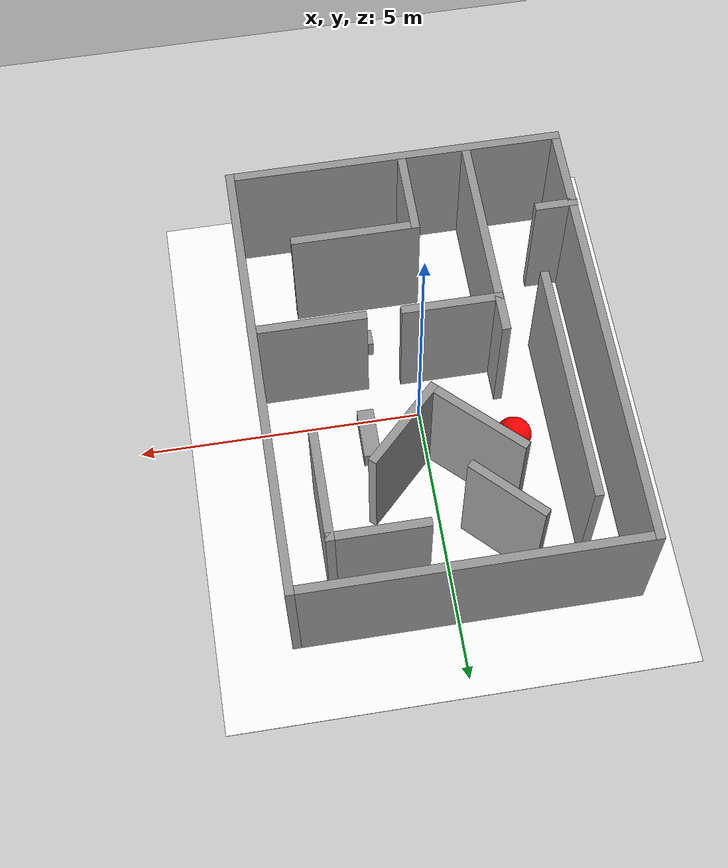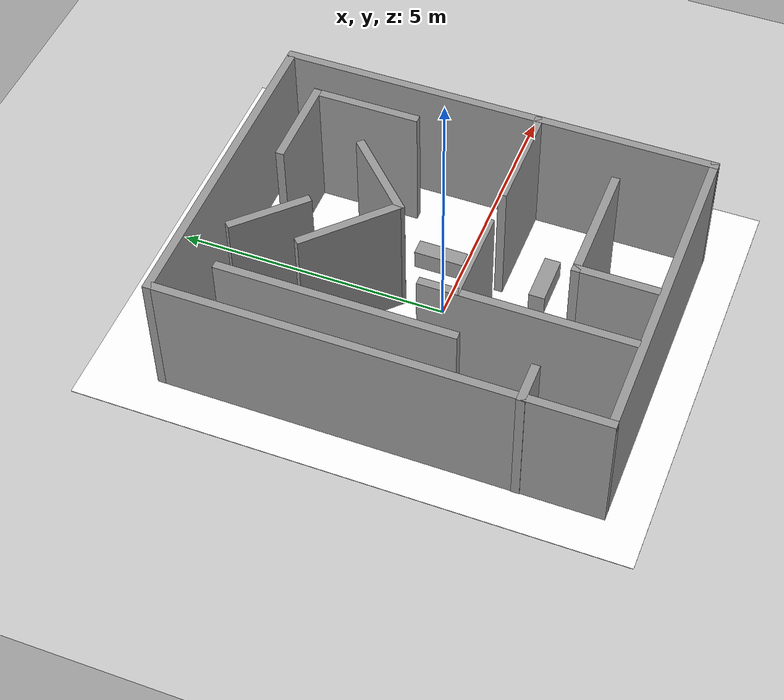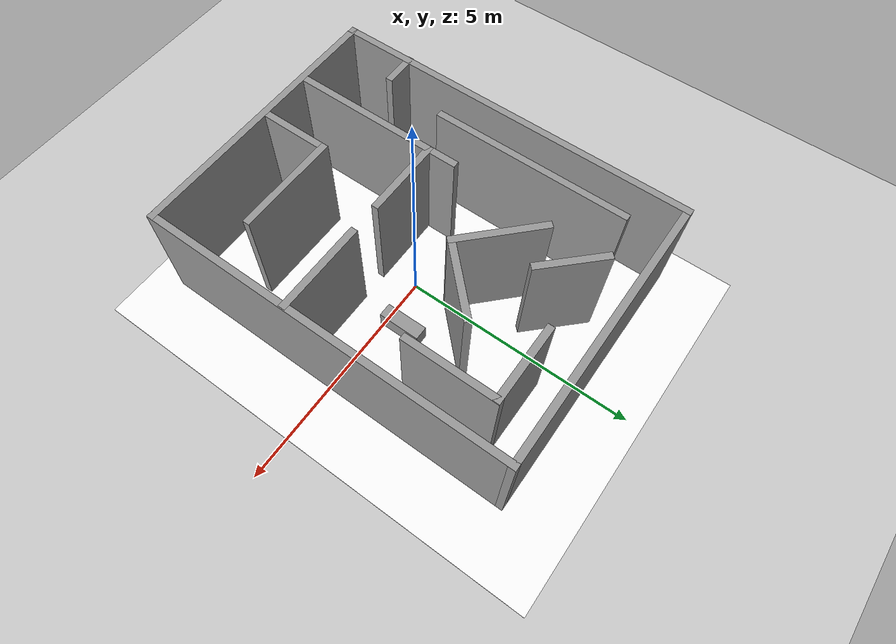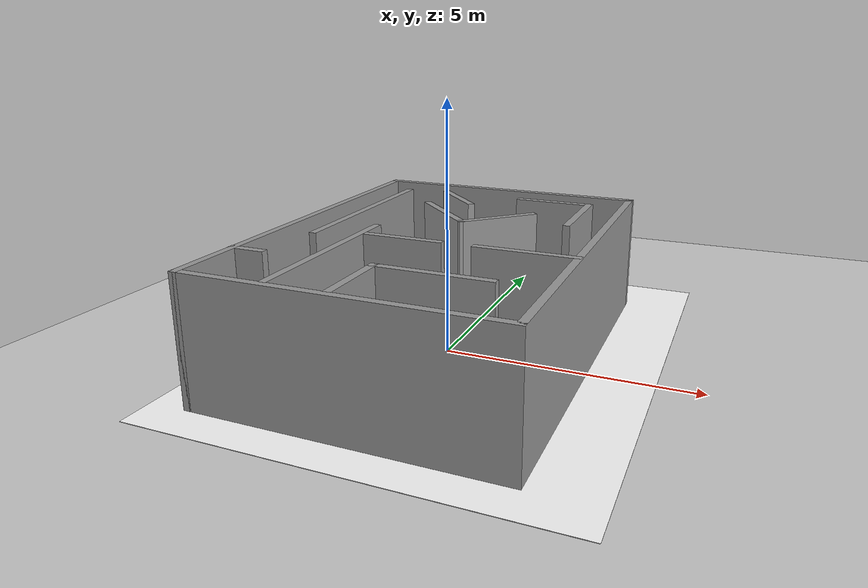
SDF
<sdf version="1.7">
 <world name="default">
  <light name="sun" type="directional">
   <pose>0 0 10 0 -0 0</pose>
   <diffuse>0.8 0.8 0.8 1</diffuse>
   <specular>0.2 0.2 0.2 1</specular>
   <attenuation>
    <range>1000</range>
    <constant>0.9</constant>
    <linear>0.01</linear>
    <quadratic>0.001</quadratic>
   </attenuation>
   <direction>-0.5 0.1 -0.9</direction>
   <spot><inner_angle>0</inner_angle><outer_angle>0</outer_angle><falloff>0</falloff></spot>
  </light>
  <model name="ground_plane">
   <static>1</static>
   <link name="link">
    <collision name="collision">
     <geometry><plane><normal>0 0 1</normal><size>100 100</size></plane></geometry>
     <surface>
      <contact><collide_bitmask>65535</collide_bitmask></contact>
      <friction><ode><mu>100</mu><mu2>50</mu2></ode></friction>
     </surface>
    </collision>
    <visual name="visual">
     <cast_shadows>0</cast_shadows>
     <geometry><plane><normal>0 0 1</normal><size>100 100</size></plane></geometry>
     <material>
      <script><uri>file://media/materials/scripts/gazebo.material</uri><name>Gazebo/Grey</name></script>
     </material>
    </visual>
   </link>
  </model>
  <gravity>0 0 -9.8</gravity>
  <magnetic_field>6e-06 2.3e-05 -4.2e-05</magnetic_field>
  <atmosphere type="adiabatic"/>
  <physics type="ode">
   <max_step_size>0.001</max_step_size>
   <real_time_factor>1</real_time_factor>
   <real_time_update_rate>1000</real_time_update_rate>
  </physics>
  <scene><ambient>0.4 0.4 0.4 1</ambient><background>0.7 0.7 0.7 1</background><shadows>1</shadows></scene>
  <spherical_coordinates>
   <surface_model>EARTH_WGS84</surface_model>
   <latitude_deg>0</latitude_deg>
   <longitude_deg>0</longitude_deg>
   <elevation>0</elevation>
   <heading_deg>0</heading_deg>
  </spherical_coordinates>
  <model name="env02">
   <pose>-0.178481 0.02134 0 0 -0 0</pose>
   <link name="Wall_13">
    <collision name="Wall_13_Collision">
     <geometry><box><size>1.5 0.15 2.5</size></box></geometry>
     <pose>0 0 1.25 0 -0 0</pose>
    </collision>
    <visual name="Wall_13_Visual">
     <pose>0 0 1.25 0 -0 0</pose>
     <geometry><box><size>1.5 0.15 2.5</size></box></geometry>
     <material>
      <script><uri>file://media/materials/scripts/gazebo.material</uri><name>Gazebo/Grey</name></script>
      <ambient>1 1 1 1</ambient>
     </material>
     <meta><layer>0</layer></meta>
    </visual>
    <pose>-0.751841 2.75701 0 0 -0 -0.785398</pose>
   </link>
   <link name="Wall_2">
    <collision name="Wall_2_Collision">
     <geometry><box><size>8 0.15 2.5</size></box></geometry>
     <pose>0 0 1.25 0 -0 0</pose>
    </collision>
    <visual name="Wall_2_Visual">
     <pose>0 0 1.25 0 -0 0</pose>
     <geometry><box><size>8 0.15 2.5</size></box></geometry>
     <material>
      <script><uri>file://media/materials/scripts/gazebo.material</uri><name>Gazebo/Grey</name></script>
      <ambient>1 1 1 1</ambient>
     </material>
     <meta><layer>0</layer></meta>
    </visual>
    <pose>-2.91996 -0 0 0 -0 -1.5708</pose>
   </link>
   <link name="Wall_22">
    <collision name="Wall_22_Collision">
     <geometry><box><size>2 0.15 2.5</size></box></geometry>
     <pose>0 0 1.25 0 -0 0</pose>
    </collision>
    <visual name="Wall_22_Visual">
     <pose>0 0 1.25 0 -0 0</pose>
     <geometry><box><size>2 0.15 2.5</size></box></geometry>
     <material>
      <script><uri>file://media/materials/scripts/gazebo.material</uri><name>Gazebo/Grey</name></script>
      <ambient>1 1 1 1</ambient>
     </material>
     <meta><layer>0</layer></meta>
    </visual>
    <pose>2.18448 2.2064 0 0 -0 -1.5708</pose>
   </link>
   <link name="Wall_24">
    <collision name="Wall_24_Collision">
     <geometry><box><size>1.70028 0.15 2.5</size></box></geometry>
     <pose>0 0 1.25 0 -0 0</pose>
    </collision>
    <visual name="Wall_24_Visual">
     <pose>0 0 1.25 0 -0 0</pose>
     <geometry><box><size>1.70028 0.15 2.5</size></box></geometry>
     <material>
      <script><uri>file://media/materials/scripts/gazebo.material</uri><name>Gazebo/Grey</name></script>
      <ambient>1 1 1 1</ambient>
     </material>
     <meta><layer>0</layer></meta>
    </visual>
    <pose>1.39939 3.13139 0 0 -0 3.14159</pose>
   </link>
   <link name="Wall_26">
    <collision name="Wall_26_Collision">
     <geometry><box><size>1.94682 0.15 2.5</size></box></geometry>
     <pose>0 0 1.25 0 -0 0</pose>
    </collision>
    <visual name="Wall_26_Visual">
     <pose>0 0 1.25 0 -0 0</pose>
     <geometry><box><size>1.94682 0.15 2.5</size></box></geometry>
     <material>
      <script><uri>file://media/materials/scripts/gazebo.material</uri><name>Gazebo/Grey</name></script>
      <ambient>1 1 1 1</ambient>
     </material>
     <meta><layer>0</layer></meta>
    </visual>
    <pose>-0.506792 1.39452 0 0 -0 -0.767543</pose>
   </link>
   <link name="Wall_27">
    <collision name="Wall_27_Collision">
     <geometry><box><size>1.75 0.15 2.5</size></box></geometry>
     <pose>0 0 1.25 0 -0 0</pose>
    </collision>
    <visual name="Wall_27_Visual">
     <pose>0 0 1.25 0 -0 0</pose>
     <geometry><box><size>1.75 0.15 2.5</size></box></geometry>
     <material>
      <script><uri>file://media/materials/scripts/gazebo.material</uri><name>Gazebo/Grey</name></script>
      <ambient>1 1 1 1</ambient>
     </material>
     <meta><layer>0</layer></meta>
    </visual>
    <pose>0.705406 1.33638 0 0 -0 0.785398</pose>
   </link>
   <link name="Wall_30">
    <collision name="Wall_30_Collision">
     <geometry><box><size>3.75 0.15 2.5</size></box></geometry>
     <pose>0 0 1.25 0 -0 0</pose>
    </collision>
    <visual name="Wall_30_Visual">
     <pose>0 0 1.25 0 -0 0</pose>
     <geometry><box><size>3.75 0.15 2.5</size></box></geometry>
     <material>
      <script><uri>file://media/materials/scripts/gazebo.material</uri><name>Gazebo/Grey</name></script>
      <ambient>1 1 1 1</ambient>
     </material>
     <meta><layer>0</layer></meta>
    </visual>
    <pose>-1.2845 -1.99005 0 0 -0 -1.5708</pose>
   </link>
   <link name="Wall_34">
    <collision name="Wall_34_Collision">
     <geometry><box><size>1.75 0.15 2.5</size></box></geometry>
     <pose>0 0 1.25 0 -0 0</pose>
    </collision>
    <visual name="Wall_34_Visual">
     <pose>0 0 1.25 0 -0 0</pose>
     <geometry><box><size>1.75 0.15 2.5</size></box></geometry>
     <material>
      <script><uri>file://media/materials/scripts/gazebo.material</uri><name>Gazebo/Grey</name></script>
      <ambient>1 1 1 1</ambient>
     </material>
     <meta><layer>0</layer></meta>
    </visual>
    <pose>-0.477153 -0.7658 0 0 -0 0</pose>
   </link>
   <link name="Wall_4">
    <collision name="Wall_4_Collision">
     <geometry><box><size>6 0.15 2.5</size></box></geometry>
     <pose>0 0 1.25 0 -0 0</pose>
    </collision>
    <visual name="Wall_4_Visual">
     <pose>0 0 1.25 0 -0 0</pose>
     <geometry><box><size>6 0.15 2.5</size></box></geometry>
     <material>
      <script><uri>file://media/materials/scripts/gazebo.material</uri><name>Gazebo/Grey</name></script>
      <ambient>1 1 1 1</ambient>
     </material>
     <meta><layer>0</layer></meta>
    </visual>
    <pose>0.005038 -3.925 0 0 -0 0</pose>
   </link>
   <link name="Wall_41">
    <collision name="Wall_41_Collision">
     <geometry><box><size>2 0.15 2.5</size></box></geometry>
     <pose>0 0 1.25 0 -0 0</pose>
    </collision>
    <visual name="Wall_41_Visual">
     <pose>0 0 1.25 0 -0 0</pose>
     <geometry><box><size>2 0.15 2.5</size></box></geometry>
     <material>
      <script><uri>file://media/materials/scripts/gazebo.material</uri><name>Gazebo/Grey</name></script>
      <ambient>1 1 1 1</ambient>
     </material>
     <meta><layer>0</layer></meta>
    </visual>
    <pose>1.9842 -0.766011 0 0 -0 0</pose>
   </link>
   <link name="Wall_43">
    <collision name="Wall_43_Collision">
     <geometry><box><size>2.25 0.15 2.5</size></box></geometry>
     <pose>0 0 1.25 0 -0 0</pose>
    </collision>
    <visual name="Wall_43_Visual">
     <pose>0 0 1.25 0 -0 0</pose>
     <geometry><box><size>2.25 0.15 2.5</size></box></geometry>
     <material>
      <script><uri>file://media/materials/scripts/gazebo.material</uri><name>Gazebo/Grey</name></script>
      <ambient>1 1 1 1</ambient>
     </material>
     <meta><layer>0</layer></meta>
    </visual>
    <pose>0.92532 -2.43655 0 0 -0 3.14159</pose>
   </link>
   <link name="Wall_44">
    <collision name="Wall_44_Collision">
     <geometry><box><size>1.5 0.15 2.5</size></box></geometry>
     <pose>0 0 1.25 0 -0 0</pose>
    </collision>
    <visual name="Wall_44_Visual">
     <pose>0 0 1.25 0 -0 0</pose>
     <geometry><box><size>1.5 0.15 2.5</size></box></geometry>
     <material>
      <script><uri>file://media/materials/scripts/gazebo.material</uri><name>Gazebo/Grey</name></script>
      <ambient>1 1 1 1</ambient>
     </material>
     <meta><layer>0</layer></meta>
    </visual>
    <pose>-0.12468 -3.11155 0 0 -0 -1.5708</pose>
   </link>
   <link name="Wall_46">
    <collision name="Wall_46_Collision">
     <geometry><box><size>0.75 0.15 2.5</size></box></geometry>
     <pose>0 0 1.25 0 -0 0</pose>
    </collision>
    <visual name="Wall_46_Visual">
     <pose>0 0 1.25 0 -0 0</pose>
     <geometry><box><size>0.75 0.15 2.5</size></box></geometry>
     <material>
      <script><uri>file://media/materials/scripts/gazebo.material</uri><name>Gazebo/Grey</name></script>
      <ambient>1 1 1 1</ambient>
     </material>
     <meta><layer>0</layer></meta>
    </visual>
    <pose>-2.63004 -2.46285 0 0 -0 0</pose>
   </link>
   <link name="Wall_5">
    <collision name="Wall_5_Collision">
     <geometry><box><size>8 0.15 2.5</size></box></geometry>
     <pose>0 0 1.25 0 -0 0</pose>
    </collision>
    <visual name="Wall_5_Visual">
     <pose>0 0 1.25 0 -0 0</pose>
     <geometry><box><size>8 0.15 2.5</size></box></geometry>
     <material>
      <script><uri>file://media/materials/scripts/gazebo.material</uri><name>Gazebo/Grey</name></script>
      <ambient>1 1 1 1</ambient>
     </material>
     <meta><layer>0</layer></meta>
    </visual>
    <pose>2.93004 -0 0 0 -0 1.5708</pose>
   </link>
   <link name="Wall_6">
    <collision name="Wall_6_Collision">
     <geometry><box><size>6 0.15 2.5</size></box></geometry>
     <pose>0 0 1.25 0 -0 0</pose>
    </collision>
    <visual name="Wall_6_Visual">
     <pose>0 0 1.25 0 -0 0</pose>
     <geometry><box><size>6 0.15 2.5</size></box></geometry>
     <material>
      <script><uri>file://media/materials/scripts/gazebo.material</uri><name>Gazebo/Grey</name></script>
      <ambient>1 1 1 1</ambient>
     </material>
     <meta><layer>0</layer></meta>
    </visual>
    <pose>0.005038 3.925 0 0 -0 3.14159</pose>
   </link>
   <link name="Wall_9">
    <collision name="Wall_9_Collision">
     <geometry><box><size>4.25 0.15 2.5</size></box></geometry>
     <pose>0 0 1.25 0 -0 0</pose>
    </collision>
    <visual name="Wall_9_Visual">
     <pose>0 0 1.25 0 -0 0</pose>
     <geometry><box><size>4.25 0.15 2.5</size></box></geometry>
     <material>
      <script><uri>file://media/materials/scripts/gazebo.material</uri><name>Gazebo/Grey</name></script>
      <ambient>1 1 1 1</ambient>
     </material>
     <meta><layer>0</layer></meta>
    </visual>
    <pose>-2.13988 0.993974 0 0 -0 -1.5708</pose>
   </link>
   <static>1</static>
  </model>
  <model name="sphere_r">
   <link name="link_1">
    <pose>0 0 0.1 0 -0 0</pose>
    <inertial>
     <mass>31.7115</mass>
     <inertia><ixx>1.2708</ixx><ixy>0</ixy><ixz>0</ixz><iyy>1.2708</iyy><iyz>0</iyz><izz>1.2708</izz></inertia>
    </inertial>
    <visual name="visual">
     <geometry><sphere><radius>0.316519</radius></sphere></geometry>
     <material>
      <lighting>1</lighting>
      <script><uri>file://media/materials/scripts/gazebo.material</uri><name>Gazebo/Grey</name></script>
      <ambient>1 0 0 1</ambient>
      <diffuse>1 0 0 1</diffuse>
      <specular>0 0 0 1</specular>
      <emissive>0 0 0 1</emissive>
      <shader type="vertex"><normal_map>__default__</normal_map></shader>
     </material>
    </visual>
    <collision name="collision">
     <geometry><sphere><radius>0.316519</radius></sphere></geometry>
     <surface>
      <friction>
       <ode><mu>1</mu><mu2>1</mu2><fdir1>0 0 0</fdir1><slip1>0</slip1><slip2>0</slip2></ode>
       <torsional>
        <coefficient>1</coefficient>
        <patch_radius>0</patch_radius>
        <surface_radius>0</surface_radius>
        <use_patch_radius>1</use_patch_radius>
        <ode><slip>0</slip></ode>
       </torsional>
      </friction>
      <bounce><restitution_coefficient>0</restitution_coefficient><threshold>1e+06</threshold></bounce>
      <contact>
       <collide_without_contact>0</collide_without_contact>
       <collide_without_contact_bitmask>1</collide_without_contact_bitmask>
       <collide_bitmask>1</collide_bitmask>
       <ode>
        <soft_cfm>0</soft_cfm>
        <soft_erp>0.2</soft_erp>
        <kp>1e+13</kp>
        <kd>1</kd>
        <max_vel>0.01</max_vel>
        <min_depth>0</min_depth>
       </ode>
       <bullet>
        <split_impulse>1</split_impulse>
        <split_impulse_penetration_threshold>-0.01</split_impulse_penetration_threshold>
        <soft_cfm>0</soft_cfm>
        <soft_erp>0.2</soft_erp>
        <kp>1e+13</kp>
        <kd>1</kd>
       </bullet>
      </contact>
     </surface>
    </collision>
   </link>
   <static>1</static>
   <pose>-1.56131 0.805415 0.215721 0 -0 0</pose>
  </model>
  <model name="Box_36x15W">
   <link name="Wall">
    <pose>0 0 0.1985 0 -0 0</pose>
    <inertial>
     <mass>5</mass>
     <inertia><ixx>0.1022</ixx><iyy>0.4107</iyy><izz>0.3815</izz><ixy>0</ixy><ixz>0</ixz><iyz>0</iyz></inertia>
    </inertial>
    <collision name="Wall_Collision"><geometry><box><size>0.91 0.296 0.397</size></box></geometry></collision>
    <visual name="Wall_Visual">
     <geometry><box><size>0.91 0.296 0.397</size></box></geometry>
     <material>
      <script><uri>file://media/materials/scripts/gazebo.material</uri><name>Gazebo/Grey</name></script>
      <ambient>1 1 1 1</ambient>
     </material>
    </visual>
   </link>
   <static>1</static>
   <pose>1.06355 -1.51763 0 0 -0 0</pose>
  </model>
  <model name="Box_36x15W_0">
   <link name="Wall">
    <pose>0 0 0.1985 0 -0 0</pose>
    <inertial>
     <mass>5</mass>
     <inertia><ixx>0.1022</ixx><iyy>0.4107</iyy><izz>0.3815</izz><ixy>0</ixy><ixz>0</ixz><iyz>0</iyz></inertia>
    </inertial>
    <collision name="Wall_Collision"><geometry><box><size>0.91 0.296 0.397</size></box></geometry></collision>
    <visual name="Wall_Visual">
     <geometry><box><size>0.91 0.296 0.397</size></box></geometry>
     <material>
      <script><uri>file://media/materials/scripts/gazebo.material</uri><name>Gazebo/Grey</name></script>
      <ambient>1 1 1 1</ambient>
     </material>
    </visual>
   </link>
   <static>1</static>
   <pose>0.969371 0.40142 0 0 0 -1.5708</pose>
  </model>
  <model name="Floor_white">
   <link name="main">
    <pose>0.106276 0.320284 0.01 0 -0 0</pose>
    <inertial>
     <mass>0.126387</mass>
     <inertia><ixx>2.38743</ixx><ixy>0</ixy><ixz>0</ixz><iyy>1.90008</iyy><iyz>0</iyz><izz>4.28751</izz></inertia>
    </inertial>
    <visual name="main_Visual">
     <geometry><box><size>8.0 10.0 0.01</size></box></geometry>
     <material>
      <script>
       <uri>model://Floor/materials/scripts</uri>
       <uri>model://Floor/materials/textures</uri>
       <name>floor</name>
      </script>
      <shader type="pixel"><normal_map>__default__</normal_map></shader>
      <ambient>1 1 1 1</ambient>
      <diffuse>1 1 1 1</diffuse>
      <specular>0 0 0 1</specular>
      <emissive>0.94 0.94 0.94 0.9</emissive>
     </material>
    </visual>
    <collision name="main_Collision">
     <geometry><box><size>8.0 10.0 0.01</size></box></geometry>
     <surface>
      <friction>
       <ode><mu>1</mu><mu2>1</mu2><fdir1>0 0 0</fdir1><slip1>0</slip1><slip2>0</slip2></ode>
       <torsional>
        <coefficient>1</coefficient>
        <patch_radius>0</patch_radius>
        <surface_radius>0</surface_radius>
        <use_patch_radius>1</use_patch_radius>
        <ode><slip>0</slip></ode>
       </torsional>
      </friction>
      <bounce><restitution_coefficient>0</restitution_coefficient><threshold>1e+06</threshold></bounce>
      <contact>
       <collide_without_contact>0</collide_without_contact>
       <collide_without_contact_bitmask>1</collide_without_contact_bitmask>
       <collide_bitmask>1</collide_bitmask>
       <ode>
        <soft_cfm>0</soft_cfm>
        <soft_erp>0.2</soft_erp>
        <kp>1e+13</kp>
        <kd>1</kd>
        <max_vel>0.01</max_vel>
        <min_depth>0</min_depth>
       </ode>
       <bullet>
        <split_impulse>1</split_impulse>
        <split_impulse_penetration_threshold>-0.01</split_impulse_penetration_threshold>
        <soft_cfm>0</soft_cfm>
        <soft_erp>0.2</soft_erp>
        <kp>1e+13</kp>
        <kd>1</kd>
       </bullet>
      </contact>
     </surface>
    </collision>
   </link>
   <static>1</static>
  </model>
 </world>
</sdf>
